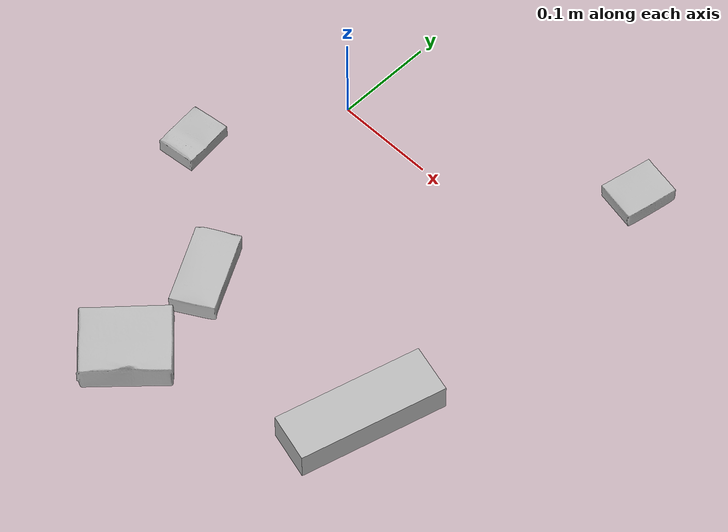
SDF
<sdf version="1.4">
  <world name="default">
    <light name="light1" type="point">
      <pose>0 0 1 0 0 0</pose>
      <diffuse>3 3 3 1</diffuse>
      <specular>3 3 3 1</specular>
    </light>
    <light name="light2" type="point">
      <pose>0 0.5 2 0 0 0</pose>
      <diffuse>1 1 1 1</diffuse>
      <specular>1 1 1 1</specular>
    </light>
    <light name="light3" type="point">
      <pose>0 0.5 2 0 0 0</pose>
      <diffuse>3 3 3 1</diffuse>
      <specular>3 3 3 1</specular>
    </light>
    <scene>
      <ambient>0.7 0.7 0.7</ambient>
    </scene>
    <model name="box1">
      <link name="link_box1">
        <collision name="default">
          <geometry>
            <mesh>
              <uri>model://sugar_box/collision_meshes/collision.obj</uri>
              <scale>0.5 0.5 0.5</scale>
            </mesh>
          </geometry>
          <surface>
            <friction>
              <ode>
                <mu>0.5</mu>
                <mu2>0.5</mu2>
              </ode>
            </friction>
          <contact>
        <ode>
            <max_vel>0</max_vel>
            <min_depth>0.0001</min_depth>
            <kp>1e8</kp>
        </ode>
    </contact></surface>
        </collision>
        <visual name="default">
          <geometry>
            <mesh>
              <uri>model://sugar_box/visual_meshes/visual.dae</uri>
              <scale>0.5 0.5 0.5</scale>
            </mesh>
          </geometry>
        </visual>
        <inertial>
          <mass>0.050072960555553436</mass>
          <pose>0.0005171863595023751 1.924554817378521e-05 -0.00018182402709499002 -0.0004046260967901466 0.0010506635218491861 0.0026153785561980193</pose>
          <inertia>
            <ixx>1.0430162e-05</ixx>
            <iyy>3.371243e-05</iyy>
            <izz>4.0357794e-05</izz>
            <ixy>0</ixy>
            <ixz>0</ixz>
            <iyz>0</iyz>
          </inertia>
        </inertial>
      </link>
      <pose>0.04447074607014656 -0.23245054483413696 0.011399306356906891 0.0007755420300706969 -0.02343268407992593 -1.070224092550781</pose>
    </model>
    <model name="box2">
      <link name="link_box2">
        <collision name="default">
          <geometry>
            <mesh>
              <uri>model://pudding_box/collision_meshes/collision.obj</uri>
              <scale>0.5 0.5 0.5</scale>
            </mesh>
          </geometry>
          <surface>
            <friction>
              <ode>
                <mu>0.5</mu>
                <mu2>0.5</mu2>
              </ode>
            </friction>
          <contact>
        <ode>
            <max_vel>0</max_vel>
            <min_depth>0.0001</min_depth>
            <kp>1e8</kp>
        </ode>
    </contact></surface>
        </collision>
        <visual name="default">
          <geometry>
            <mesh>
              <uri>model://pudding_box/visual_meshes/visual.dae</uri>
              <scale>0.5 0.5 0.5</scale>
            </mesh>
          </geometry>
        </visual>
        <inertial>
          <mass>0.026034390553832054</mass>
          <pose>0.00024474109522998333 0.00040339428232982755 -0.0002594413817860186 0.005213101355963405 -0.006603798228586091 0.020079817710543634</pose>
          <inertia>
            <ixx>7.3576343e-06</ixx>
            <iyy>4.9502682e-06</iyy>
            <izz>1.086547e-05</izz>
            <ixy>0</ixy>
            <ixz>0</ixz>
            <iyz>0</iyz>
          </inertia>
        </inertial>
      </link>
      <pose>0.26862606406211853 0.11837585270404816 0.009862905368208885 0.02234842589284127 -0.011391759951087526 -0.21772089153425558</pose>
    </model>
    <model name="box3">
      <link name="link_box3">
        <collision name="default">
          <geometry>
            <mesh>
              <uri>model://jenga/collision_meshes/collision.obj</uri>
              <scale>1.0 1.0 1.0</scale>
            </mesh>
          </geometry>
          <surface>
            <friction>
              <ode>
                <mu>0.5</mu>
                <mu2>0.5</mu2>
              </ode>
            </friction>
          <contact>
        <ode>
            <max_vel>0</max_vel>
            <min_depth>0.0001</min_depth>
            <kp>1e8</kp>
        </ode>
    </contact></surface>
        </collision>
        <visual name="default">
          <geometry>
            <mesh>
              <uri>model://jenga/visual_meshes/visual.dae</uri>
              <scale>1.0 1.0 1.0</scale>
            </mesh>
          </geometry>
        </visual>
        <inertial>
          <mass>0.2076648771762848</mass>
          <pose>-2.502856091268768e-07 -0.00010250010382151231 -4.0923405322246253e-05 0.0 -7.34215461761844e-07 0.0</pose>
          <inertia>
            <ixx>5.746591e-05</ixx>
            <iyy>0.00038938745</iyy>
            <izz>0.0004157042</izz>
            <ixy>0</ixy>
            <ixz>0</ixz>
            <iyz>0</iyz>
          </inertia>
        </inertial>
      </link>
      <pose>0.2561084032058716 -0.2415902465581894 0.014999997802078724 7.964672264395756e-09 3.0146770813226697e-09 1.2987819521483872</pose>
    </model>
    <model name="box4">
      <link name="link_box4">
        <collision name="default">
          <geometry>
            <mesh>
              <uri>model://gelatin_box/collision_meshes/collision.obj</uri>
              <scale>1.0 1.0 1.0</scale>
            </mesh>
          </geometry>
          <surface>
            <friction>
              <ode>
                <mu>0.5</mu>
                <mu2>0.5</mu2>
              </ode>
            </friction>
          <contact>
        <ode>
            <max_vel>0</max_vel>
            <min_depth>0.0001</min_depth>
            <kp>1e8</kp>
        </ode>
    </contact></surface>
        </collision>
        <visual name="default">
          <geometry>
            <mesh>
              <uri>model://gelatin_box/visual_meshes/visual.dae</uri>
              <scale>1.0 1.0 1.0</scale>
            </mesh>
          </geometry>
        </visual>
        <inertial>
          <mass>0.09577830880880356</mass>
          <pose>0.000431961816502735 0.00011156871187267825 -0.0003640321083366871 -0.0010503719862657887 -0.004755821487046037 0.01644055388468454</pose>
          <inertia>
            <ixx>6.761167e-05</ixx>
            <iyy>4.8294667e-05</iyy>
            <izz>0.00010292002</izz>
            <ixy>0</ixy>
            <ixz>0</ixz>
            <iyz>0</iyz>
          </inertia>
        </inertial>
      </link>
      <pose>0.05251229926943779 -0.3421994149684906 0.015168314799666405 0.005597398226298539 -0.00730448995319616 -0.7744171260950822</pose>
    </model>
    <model name="box5">
      <link name="link_box5">
        <collision name="default">
          <geometry>
            <mesh>
              <uri>model://cracker_box/collision_meshes/collision.obj</uri>
              <scale>0.25 0.25 0.25</scale>
            </mesh>
          </geometry>
          <surface>
            <friction>
              <ode>
                <mu>0.5</mu>
                <mu2>0.5</mu2>
              </ode>
            </friction>
          <contact>
        <ode>
            <max_vel>0</max_vel>
            <min_depth>0.0001</min_depth>
            <kp>1e8</kp>
        </ode>
    </contact></surface>
        </collision>
        <visual name="default">
          <geometry>
            <mesh>
              <uri>model://cracker_box/visual_meshes/visual.dae</uri>
              <scale>0.25 0.25 0.25</scale>
            </mesh>
          </geometry>
        </visual>
        <inertial>
          <mass>0.019404999911785126</mass>
          <pose>0.00023660343140363693 6.358561950037256e-05 -0.00042573839891701937 -0.00031620745436260704 -0.011106489600575076 0.0025467952338677235</pose>
          <inertia>
            <ixx>3.084854e-06</ixx>
            <iyy>5.093699e-06</iyy>
            <izz>7.269177e-06</izz>
            <ixy>0</ixy>
            <ixz>0</ixz>
            <iyz>0</iyz>
          </inertia>
        </inertial>
      </link>
      <pose>-0.07678111642599106 -0.13157899677753448 0.009096026420593262 -0.014050455181087614 -0.005016576451988418 1.6634598555069589</pose>
    </model>
  <physics type="ode">
      <max_contacts>50</max_contacts>
      <ode>
        <solver>
          <type>quick</type>
          <iters>75</iters>
        </solver>
        <constraints>
          <contact_max_correcting_vel>0</contact_max_correcting_vel>
          <contact_surface_layer>0</contact_surface_layer>
        </constraints>
      </ode>
    </physics></world>
</sdf>
